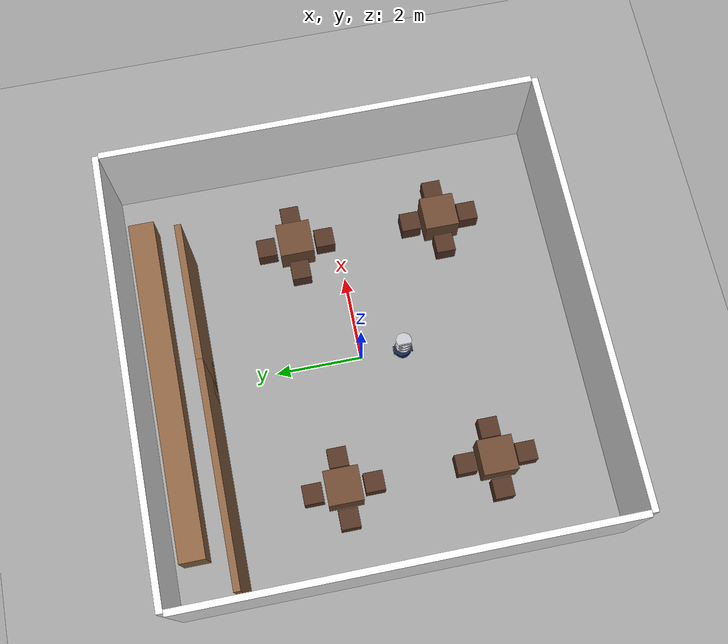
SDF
<?xml version="1.0" ?>
<sdf version="1.8">
  <world name="restaurant">
    <physics name="1ms" type="ignored">
      <max_step_size>0.001</max_step_size>
      <real_time_factor>1.0</real_time_factor>
    </physics>

    <plugin filename="libignition-gazebo6-physics-system.so" name="ignition::gazebo::systems::Physics"/>
    <plugin filename="libignition-gazebo6-user-commands-system.so" name="ignition::gazebo::systems::UserCommands"/>
    <plugin filename="libignition-gazebo6-scene-broadcaster-system.so" name="ignition::gazebo::systems::SceneBroadcaster"/>
<plugin
  filename="libignition-gazebo6-sensors-system.so"
  name="ignition::gazebo::systems::Sensors">

  <render_engine>ogre2</render_engine>

</plugin>

    <gravity>0 0 -9.8</gravity>

    <light name="sun" type="directional">
      <cast_shadows>true</cast_shadows>
      <pose>0 0 10 0 0 0</pose>
      <diffuse>1 1 1 1</diffuse>
      <specular>0.15 0.15 0.15 1</specular>
      <direction>-0.5 0.5 -1</direction>
    </light>

    <model name="ground_plane">
      <static>true</static>
      <link name="link">
        <collision name="collision">
          <geometry>
            <plane>
              <normal>0 0 1</normal>
              <size>20 20</size>
            </plane>
          </geometry>
        </collision>
        <visual name="visual">
          <geometry>
            <plane>
              <normal>0 0 1</normal>
              <size>20 20</size>
            </plane>
          </geometry>
          <material>
            <ambient>0.55 0.55 0.55 1</ambient>
            <diffuse>0.62 0.62 0.62 1</diffuse>
            <specular>0.02 0.02 0.02 1</specular>
          </material>
        </visual>
      </link>
    </model>

    <model name="wall_south">
      <static>true</static>
      <pose>0 -5.075 1.25 0 0 0</pose>
      <link name="link">
        <collision name="col"><geometry><box><size>10.15 0.15 2.5</size></box></geometry></collision>
        <visual name="vis">
          <geometry><box><size>10.15 0.15 2.5</size></box></geometry>
          <material><ambient>0.95 0.95 0.95 1</ambient><diffuse>0.95 0.95 0.95 1</diffuse></material>
        </visual>
      </link>
    </model>

    <model name="wall_north">
      <static>true</static>
      <pose>0 5.075 1.25 0 0 0</pose>
      <link name="link">
        <collision name="col"><geometry><box><size>10.15 0.15 2.5</size></box></geometry></collision>
        <visual name="vis">
          <geometry><box><size>10.15 0.15 2.5</size></box></geometry>
          <material><ambient>0.95 0.95 0.95 1</ambient><diffuse>0.95 0.95 0.95 1</diffuse></material>
        </visual>
      </link>
    </model>

    <model name="wall_west">
      <static>true</static>
      <pose>-5.075 0 1.25 0 0 0</pose>
      <link name="link">
        <collision name="col"><geometry><box><size>0.15 10.0 2.5</size></box></geometry></collision>
        <visual name="vis">
          <geometry><box><size>0.15 10.0 2.5</size></box></geometry>
          <material><ambient>0.95 0.95 0.95 1</ambient><diffuse>0.95 0.95 0.95 1</diffuse></material>
        </visual>
      </link>
    </model>

    <model name="wall_east">
      <static>true</static>
      <pose>5.075 0 1.25 0 0 0</pose>
      <link name="link">
        <collision name="col"><geometry><box><size>0.15 10.0 2.5</size></box></geometry></collision>
        <visual name="vis">
          <geometry><box><size>0.15 10.0 2.5</size></box></geometry>
          <material><ambient>0.95 0.95 0.95 1</ambient><diffuse>0.95 0.95 0.95 1</diffuse></material>
        </visual>
      </link>
    </model>

    <model name="kitchen_divider_left">
      <static>true</static>
      <pose>1.5 3.5 1.25 0 0 0</pose>
      <link name="link">
        <collision name="col"><geometry><box><size>3.15 0.15 2.5</size></box></geometry></collision>
        <visual name="vis">
          <geometry><box><size>3.15 0.15 2.5</size></box></geometry>
          <material><ambient>0.55 0.39 0.26 1</ambient><diffuse>0.55 0.39 0.26 1</diffuse></material>
        </visual>
      </link>
    </model>

    <model name="kitchen_divider_right">
      <static>true</static>
      <pose>-2.5 3.5 1.25 0 0 0</pose>
      <link name="link">
        <collision name="col"><geometry><box><size>4.9 0.15 2.5</size></box></geometry></collision>
        <visual name="vis">
          <geometry><box><size>4.9 0.15 2.5</size></box></geometry>
          <material><ambient>0.55 0.39 0.26 1</ambient><diffuse>0.55 0.39 0.26 1</diffuse></material>
        </visual>
      </link>
    </model>

    <model name="serving_counter">
      <static>true</static>
      <pose>0.0 3.5 0.45 0 0 0</pose>
      <link name="link">
        <collision name="col"><geometry><box><size>0.9 0.15 0.9</size></box></geometry></collision>
        <visual name="vis">
          <geometry><box><size>0.9 0.15 0.9</size></box></geometry>
          <material><ambient>0.55 0.39 0.26 1</ambient><diffuse>0.55 0.39 0.26 1</diffuse></material>
        </visual>
      </link>
    </model>

    <model name="kitchen_counter">
      <static>true</static>
      <pose>0 4.5 0.45 0 0 0</pose>
      <link name="link">
        <collision name="col"><geometry><box><size>8.0 0.6 0.9</size></box></geometry></collision>
        <visual name="vis">
          <geometry><box><size>8.0 0.6 0.9</size></box></geometry>
          <material><ambient>0.55 0.39 0.26 1</ambient><diffuse>0.55 0.39 0.26 1</diffuse></material>
        </visual>
      </link>
    </model>

    <model name="table_1">
      <static>true</static>
      <pose>-3.0 -2.5 0.375 0 0 0</pose>
      <link name="link">
        <collision name="col"><geometry><box><size>0.8 0.8 0.75</size></box></geometry></collision>
        <visual name="vis"><geometry><box><size>0.8 0.8 0.75</size></box></geometry><material><ambient>0.42 0.28 0.19 1</ambient><diffuse>0.42 0.28 0.19 1</diffuse></material></visual>
      </link>
    </model>

    <model name="table_2">
      <static>true</static>
      <pose>3.0 -2.5 0.375 0 0 0</pose>
      <link name="link">
        <collision name="col"><geometry><box><size>0.8 0.8 0.75</size></box></geometry></collision>
        <visual name="vis"><geometry><box><size>0.8 0.8 0.75</size></box></geometry><material><ambient>0.42 0.28 0.19 1</ambient><diffuse>0.42 0.28 0.19 1</diffuse></material></visual>
      </link>
    </model>

    <model name="table_3">
      <static>true</static>
      <pose>-3.0 1.0 0.375 0 0 0</pose>
      <link name="link">
        <collision name="col"><geometry><box><size>0.8 0.8 0.75</size></box></geometry></collision>
        <visual name="vis"><geometry><box><size>0.8 0.8 0.75</size></box></geometry><material><ambient>0.42 0.28 0.19 1</ambient><diffuse>0.42 0.28 0.19 1</diffuse></material></visual>
      </link>
    </model>

    <model name="table_4">
      <static>true</static>
      <pose>3.0 1.0 0.375 0 0 0</pose>
      <link name="link">
        <collision name="col"><geometry><box><size>0.8 0.8 0.75</size></box></geometry></collision>
        <visual name="vis"><geometry><box><size>0.8 0.8 0.75</size></box></geometry><material><ambient>0.42 0.28 0.19 1</ambient><diffuse>0.42 0.28 0.19 1</diffuse></material></visual>
      </link>
    </model>

    <model name="chair_t1_n"><static>true</static><pose>-3.0 -1.8 0.225 0 0 0</pose><link name="link"><collision name="col"><geometry><box><size>0.45 0.45 0.45</size></box></geometry></collision><visual name="vis"><geometry><box><size>0.45 0.45 0.45</size></box></geometry><material><ambient>0.32 0.20 0.14 1</ambient><diffuse>0.32 0.20 0.14 1</diffuse></material></visual></link></model>
    <model name="chair_t1_s"><static>true</static><pose>-3.0 -3.2 0.225 0 0 0</pose><link name="link"><collision name="col"><geometry><box><size>0.45 0.45 0.45</size></box></geometry></collision><visual name="vis"><geometry><box><size>0.45 0.45 0.45</size></box></geometry><material><ambient>0.32 0.20 0.14 1</ambient><diffuse>0.32 0.20 0.14 1</diffuse></material></visual></link></model>
    <model name="chair_t1_e"><static>true</static><pose>-2.3 -2.5 0.225 0 0 0</pose><link name="link"><collision name="col"><geometry><box><size>0.45 0.45 0.45</size></box></geometry></collision><visual name="vis"><geometry><box><size>0.45 0.45 0.45</size></box></geometry><material><ambient>0.32 0.20 0.14 1</ambient><diffuse>0.32 0.20 0.14 1</diffuse></material></visual></link></model>
    <model name="chair_t1_w"><static>true</static><pose>-3.7 -2.5 0.225 0 0 0</pose><link name="link"><collision name="col"><geometry><box><size>0.45 0.45 0.45</size></box></geometry></collision><visual name="vis"><geometry><box><size>0.45 0.45 0.45</size></box></geometry><material><ambient>0.32 0.20 0.14 1</ambient><diffuse>0.32 0.20 0.14 1</diffuse></material></visual></link></model>

    <model name="chair_t2_n"><static>true</static><pose>3.0 -1.8 0.225 0 0 0</pose><link name="link"><collision name="col"><geometry><box><size>0.45 0.45 0.45</size></box></geometry></collision><visual name="vis"><geometry><box><size>0.45 0.45 0.45</size></box></geometry><material><ambient>0.32 0.20 0.14 1</ambient><diffuse>0.32 0.20 0.14 1</diffuse></material></visual></link></model>
    <model name="chair_t2_s"><static>true</static><pose>3.0 -3.2 0.225 0 0 0</pose><link name="link"><collision name="col"><geometry><box><size>0.45 0.45 0.45</size></box></geometry></collision><visual name="vis"><geometry><box><size>0.45 0.45 0.45</size></box></geometry><material><ambient>0.32 0.20 0.14 1</ambient><diffuse>0.32 0.20 0.14 1</diffuse></material></visual></link></model>
    <model name="chair_t2_e"><static>true</static><pose>3.7 -2.5 0.225 0 0 0</pose><link name="link"><collision name="col"><geometry><box><size>0.45 0.45 0.45</size></box></geometry></collision><visual name="vis"><geometry><box><size>0.45 0.45 0.45</size></box></geometry><material><ambient>0.32 0.20 0.14 1</ambient><diffuse>0.32 0.20 0.14 1</diffuse></material></visual></link></model>
    <model name="chair_t2_w"><static>true</static><pose>2.3 -2.5 0.225 0 0 0</pose><link name="link"><collision name="col"><geometry><box><size>0.45 0.45 0.45</size></box></geometry></collision><visual name="vis"><geometry><box><size>0.45 0.45 0.45</size></box></geometry><material><ambient>0.32 0.20 0.14 1</ambient><diffuse>0.32 0.20 0.14 1</diffuse></material></visual></link></model>

    <model name="chair_t3_n"><static>true</static><pose>-3.0 1.7 0.225 0 0 0</pose><link name="link"><collision name="col"><geometry><box><size>0.45 0.45 0.45</size></box></geometry></collision><visual name="vis"><geometry><box><size>0.45 0.45 0.45</size></box></geometry><material><ambient>0.32 0.20 0.14 1</ambient><diffuse>0.32 0.20 0.14 1</diffuse></material></visual></link></model>
    <model name="chair_t3_s"><static>true</static><pose>-3.0 0.3 0.225 0 0 0</pose><link name="link"><collision name="col"><geometry><box><size>0.45 0.45 0.45</size></box></geometry></collision><visual name="vis"><geometry><box><size>0.45 0.45 0.45</size></box></geometry><material><ambient>0.32 0.20 0.14 1</ambient><diffuse>0.32 0.20 0.14 1</diffuse></material></visual></link></model>
    <model name="chair_t3_e"><static>true</static><pose>-2.3 1.0 0.225 0 0 0</pose><link name="link"><collision name="col"><geometry><box><size>0.45 0.45 0.45</size></box></geometry></collision><visual name="vis"><geometry><box><size>0.45 0.45 0.45</size></box></geometry><material><ambient>0.32 0.20 0.14 1</ambient><diffuse>0.32 0.20 0.14 1</diffuse></material></visual></link></model>
    <model name="chair_t3_w"><static>true</static><pose>-3.7 1.0 0.225 0 0 0</pose><link name="link"><collision name="col"><geometry><box><size>0.45 0.45 0.45</size></box></geometry></collision><visual name="vis"><geometry><box><size>0.45 0.45 0.45</size></box></geometry><material><ambient>0.32 0.20 0.14 1</ambient><diffuse>0.32 0.20 0.14 1</diffuse></material></visual></link></model>

    <model name="chair_t4_n"><static>true</static><pose>3.0 1.7 0.225 0 0 0</pose><link name="link"><collision name="col"><geometry><box><size>0.45 0.45 0.45</size></box></geometry></collision><visual name="vis"><geometry><box><size>0.45 0.45 0.45</size></box></geometry><material><ambient>0.32 0.20 0.14 1</ambient><diffuse>0.32 0.20 0.14 1</diffuse></material></visual></link></model>
    <model name="chair_t4_s"><static>true</static><pose>3.0 0.3 0.225 0 0 0</pose><link name="link"><collision name="col"><geometry><box><size>0.45 0.45 0.45</size></box></geometry></collision><visual name="vis"><geometry><box><size>0.45 0.45 0.45</size></box></geometry><material><ambient>0.32 0.20 0.14 1</ambient><diffuse>0.32 0.20 0.14 1</diffuse></material></visual></link></model>
    <model name="chair_t4_e"><static>true</static><pose>3.7 1.0 0.225 0 0 0</pose><link name="link"><collision name="col"><geometry><box><size>0.45 0.45 0.45</size></box></geometry></collision><visual name="vis"><geometry><box><size>0.45 0.45 0.45</size></box></geometry><material><ambient>0.32 0.20 0.14 1</ambient><diffuse>0.32 0.20 0.14 1</diffuse></material></visual></link></model>
    <model name="chair_t4_w"><static>true</static><pose>2.3 1.0 0.225 0 0 0</pose><link name="link"><collision name="col"><geometry><box><size>0.45 0.45 0.45</size></box></geometry></collision><visual name="vis"><geometry><box><size>0.45 0.45 0.45</size></box></geometry><material><ambient>0.32 0.20 0.14 1</ambient><diffuse>0.32 0.20 0.14 1</diffuse></material></visual></link></model>

    <model name="service_bot">
      <pose>0 -1.0 0.12 0 0 0</pose>

      <link name="base_link">
        <inertial>
          <mass>8.0</mass>
          <inertia>
            <ixx>0.12</ixx>
            <ixy>0.0</ixy>
            <ixz>0.0</ixz>
            <iyy>0.12</iyy>
            <iyz>0.0</iyz>
            <izz>0.18</izz>
          </inertia>
        </inertial>
        <collision name="base_collision">
          <geometry>
            <cylinder>
              <radius>0.20</radius>
              <length>0.22</length>
            </cylinder>
          </geometry>
        </collision>
        <visual name="base_visual">
          <geometry>
            <cylinder>
              <radius>0.20</radius>
              <length>0.22</length>
            </cylinder>
          </geometry>
          <material>
            <ambient>0.08 0.14 0.32 1</ambient>
            <diffuse>0.08 0.14 0.32 1</diffuse>
          </material>
        </visual>
      </link>

      <link name="tray_bottom_link">
        <pose>0 0 0.26 0 0 0</pose>
        <inertial>
          <mass>0.35</mass>
          <inertia>
            <ixx>0.002</ixx>
            <ixy>0.0</ixy>
            <ixz>0.0</ixz>
            <iyy>0.002</iyy>
            <iyz>0.0</iyz>
            <izz>0.003</izz>
          </inertia>
        </inertial>
        <collision name="tray_bottom_collision">
          <geometry>
            <cylinder>
              <radius>0.18</radius>
              <length>0.02</length>
            </cylinder>
          </geometry>
        </collision>
        <collision name="tray_bottom_back_support_collision">
          <pose>-0.13 0 0.06 0 0 0</pose>
          <geometry>
            <box>
              <size>0.02 0.28 0.12</size>
            </box>
          </geometry>
        </collision>
        <visual name="tray_bottom_visual">
          <geometry>
            <cylinder>
              <radius>0.18</radius>
              <length>0.02</length>
            </cylinder>
          </geometry>
          <material>
            <ambient>0.75 0.75 0.78 1</ambient>
            <diffuse>0.75 0.75 0.78 1</diffuse>
          </material>
        </visual>
        <visual name="tray_bottom_back_support_visual">
          <pose>-0.13 0 0.06 0 0 0</pose>
          <geometry>
            <box>
              <size>0.02 0.28 0.12</size>
            </box>
          </geometry>
          <material>
            <ambient>0.72 0.72 0.75 1</ambient>
            <diffuse>0.72 0.72 0.75 1</diffuse>
          </material>
        </visual>
      </link>

      <link name="tray_middle_link">
        <pose>0 0 0.46 0 0 0</pose>
        <inertial>
          <mass>0.35</mass>
          <inertia>
            <ixx>0.002</ixx>
            <ixy>0.0</ixy>
            <ixz>0.0</ixz>
            <iyy>0.002</iyy>
            <iyz>0.0</iyz>
            <izz>0.003</izz>
          </inertia>
        </inertial>
        <collision name="tray_middle_collision">
          <geometry>
            <cylinder>
              <radius>0.18</radius>
              <length>0.02</length>
            </cylinder>
          </geometry>
        </collision>
        <collision name="tray_middle_back_support_collision">
          <pose>-0.13 0 0.06 0 0 0</pose>
          <geometry>
            <box>
              <size>0.02 0.28 0.12</size>
            </box>
          </geometry>
        </collision>
        <visual name="tray_middle_visual">
          <geometry>
            <cylinder>
              <radius>0.18</radius>
              <length>0.02</length>
            </cylinder>
          </geometry>
          <material>
            <ambient>0.75 0.75 0.78 1</ambient>
            <diffuse>0.75 0.75 0.78 1</diffuse>
          </material>
        </visual>
        <visual name="tray_middle_back_support_visual">
          <pose>-0.13 0 0.06 0 0 0</pose>
          <geometry>
            <box>
              <size>0.02 0.28 0.12</size>
            </box>
          </geometry>
          <material>
            <ambient>0.72 0.72 0.75 1</ambient>
            <diffuse>0.72 0.72 0.75 1</diffuse>
          </material>
        </visual>
      </link>

      <link name="tray_top_link">
        <pose>0 0 0.66 0 0 0</pose>
        <inertial>
          <mass>0.35</mass>
          <inertia>
            <ixx>0.002</ixx>
            <ixy>0.0</ixy>
            <ixz>0.0</ixz>
            <iyy>0.002</iyy>
            <iyz>0.0</iyz>
            <izz>0.003</izz>
          </inertia>
        </inertial>
        <collision name="tray_top_collision">
          <geometry>
            <cylinder>
              <radius>0.18</radius>
              <length>0.02</length>
            </cylinder>
          </geometry>
        </collision>
        <collision name="tray_top_back_support_collision">
          <pose>-0.13 0 0.06 0 0 0</pose>
          <geometry>
            <box>
              <size>0.02 0.28 0.12</size>
            </box>
          </geometry>
        </collision>
        <visual name="tray_top_visual">
          <geometry>
            <cylinder>
              <radius>0.18</radius>
              <length>0.02</length>
            </cylinder>
          </geometry>
          <material>
            <ambient>0.75 0.75 0.78 1</ambient>
            <diffuse>0.75 0.75 0.78 1</diffuse>
          </material>
        </visual>
        <visual name="tray_top_back_support_visual">
          <pose>-0.13 0 0.06 0 0 0</pose>
          <geometry>
            <box>
              <size>0.02 0.28 0.12</size>
            </box>
          </geometry>
          <material>
            <ambient>0.72 0.72 0.75 1</ambient>
            <diffuse>0.72 0.72 0.75 1</diffuse>
          </material>
        </visual>
      </link>

      <link name="left_wheel_link">
        <pose>0 0.20 -0.02 0 0 0</pose>
        <inertial>
          <mass>0.8</mass>
          <inertia>
            <ixx>0.0018</ixx>
            <ixy>0.0</ixy>
            <ixz>0.0</ixz>
            <iyy>0.0018</iyy>
            <iyz>0.0</iyz>
            <izz>0.0018</izz>
          </inertia>
        </inertial>
        <collision name="left_wheel_collision">
          <pose>0 0 0 1.5708 0 0</pose>
          <geometry>
            <cylinder>
              <radius>0.10</radius>
              <length>0.04</length>
            </cylinder>
          </geometry>
        </collision>
        <visual name="left_wheel_visual">
          <pose>0 0 0 1.5708 0 0</pose>
          <geometry>
            <cylinder>
              <radius>0.10</radius>
              <length>0.04</length>
            </cylinder>
          </geometry>
          <material>
            <ambient>0.05 0.05 0.05 1</ambient>
            <diffuse>0.05 0.05 0.05 1</diffuse>
          </material>
        </visual>
      </link>

      <link name="right_wheel_link">
        <pose>0 -0.20 -0.02 0 0 0</pose>
        <inertial>
          <mass>0.8</mass>
          <inertia>
            <ixx>0.0018</ixx>
            <ixy>0.0</ixy>
            <ixz>0.0</ixz>
            <iyy>0.0018</iyy>
            <iyz>0.0</iyz>
            <izz>0.0018</izz>
          </inertia>
        </inertial>
        <collision name="right_wheel_collision">
          <pose>0 0 0 1.5708 0 0</pose>
          <geometry>
            <cylinder>
              <radius>0.10</radius>
              <length>0.04</length>
            </cylinder>
          </geometry>
        </collision>
        <visual name="right_wheel_visual">
          <pose>0 0 0 1.5708 0 0</pose>
          <geometry>
            <cylinder>
              <radius>0.10</radius>
              <length>0.04</length>
            </cylinder>
          </geometry>
          <material>
            <ambient>0.05 0.05 0.05 1</ambient>
            <diffuse>0.05 0.05 0.05 1</diffuse>
          </material>
        </visual>
      </link>

      <link name="caster_link">
        <pose>-0.14 0 -0.075 0 0 0</pose>
        <inertial>
          <mass>0.15</mass>
          <inertia>
            <ixx>0.0001</ixx>
            <ixy>0.0</ixy>
            <ixz>0.0</ixz>
            <iyy>0.0001</iyy>
            <iyz>0.0</iyz>
            <izz>0.0001</izz>
          </inertia>
        </inertial>
        <collision name="caster_collision">
          <geometry>
            <sphere>
              <radius>0.045</radius>
            </sphere>
          </geometry>
        </collision>
        <visual name="caster_visual">
          <geometry>
            <sphere>
              <radius>0.045</radius>
            </sphere>
          </geometry>
          <material>
            <ambient>0.15 0.15 0.15 1</ambient>
            <diffuse>0.15 0.15 0.15 1</diffuse>
          </material>
        </visual>
      </link>

      <joint name="left_wheel_joint" type="revolute">
        <parent>base_link</parent>
        <child>left_wheel_link</child>
        <axis>
          <xyz>0 1 0</xyz>
          <limit>
            <lower>-1e16</lower>
            <upper>1e16</upper>
          </limit>
        </axis>
      </joint>

      <joint name="right_wheel_joint" type="revolute">
        <parent>base_link</parent>
        <child>right_wheel_link</child>
        <axis>
          <xyz>0 1 0</xyz>
          <limit>
            <lower>-1e16</lower>
            <upper>1e16</upper>
          </limit>
        </axis>
      </joint>

      <joint name="caster_joint" type="ball">
        <parent>base_link</parent>
        <child>caster_link</child>
      </joint>

      <joint name="tray_bottom_joint" type="fixed">
        <parent>base_link</parent>
        <child>tray_bottom_link</child>
      </joint>

      <joint name="tray_middle_joint" type="fixed">
        <parent>base_link</parent>
        <child>tray_middle_link</child>
      </joint>

      <joint name="tray_top_joint" type="fixed">
        <parent>base_link</parent>
        <child>tray_top_link</child>
      </joint>

      <plugin filename="libignition-gazebo6-diff-drive-system.so" name="ignition::gazebo::systems::DiffDrive">
        <left_joint>left_wheel_joint</left_joint>
        <right_joint>right_wheel_joint</right_joint>
        <wheel_separation>0.40</wheel_separation>
        <wheel_radius>0.10</wheel_radius>
        <topic>/cmd_vel</topic>
        <odom_topic>/odom</odom_topic>
        <frame_id>odom</frame_id>
        <child_frame_id>base_link</child_frame_id>
        <max_linear_velocity>2.0</max_linear_velocity>
        <max_angular_velocity>3.5</max_angular_velocity>
        <max_linear_acceleration>5.0</max_linear_acceleration>
        <max_angular_acceleration>5.0</max_angular_acceleration>
      </plugin>
      <plugin
  filename="libignition-gazebo-pose-publisher-system.so"
  name="ignition::gazebo::systems::PosePublisher">

  <publish_link_pose>true</publish_link_pose>
  <publish_sensor_pose>true</publish_sensor_pose>
  <publish_collision_pose>false</publish_collision_pose>
  <publish_visual_pose>false</publish_visual_pose>
  <publish_nested_model_pose>true</publish_nested_model_pose>
  <use_pose_vector_msg>true</use_pose_vector_msg>

</plugin>
<link name="lidar_link">

  <pose>0.18 0 0.20 0 0 0</pose>

  <inertial>
    <mass>0.1</mass>

    <inertia>
      <ixx>0.0001</ixx>
      <iyy>0.0001</iyy>
      <izz>0.0001</izz>
    </inertia>
  </inertial>

  <visual name="lidar_visual">
    <geometry>
      <cylinder>
        <radius>0.03</radius>
        <length>0.05</length>
      </cylinder>
    </geometry>

    <material>
      <ambient>0.2 0.2 0.2 1</ambient>
      <diffuse>0.2 0.2 0.2 1</diffuse>
    </material>
  </visual>

  <sensor name="lidar_sensor" type="gpu_lidar">

  <topic>/scan</topic>

  <update_rate>5</update_rate>

  <ray>

    <scan>

      <horizontal>

        <samples>360</samples>

        <resolution>1</resolution>

        <min_angle>-3.14159</min_angle>

        <max_angle>3.14159</max_angle>

      </horizontal>

    </scan>

    <range>

      <min>0.12</min>

      <max>8.0</max>

      <resolution>0.01</resolution>

    </range>

  </ray>

  <always_on>true</always_on>

  <visualize>true</visualize>

</sensor>

</link>

<joint name="lidar_joint" type="fixed">

  <parent>base_link</parent>

  <child>lidar_link</child>

</joint>

    </model>

  </world>
</sdf>
